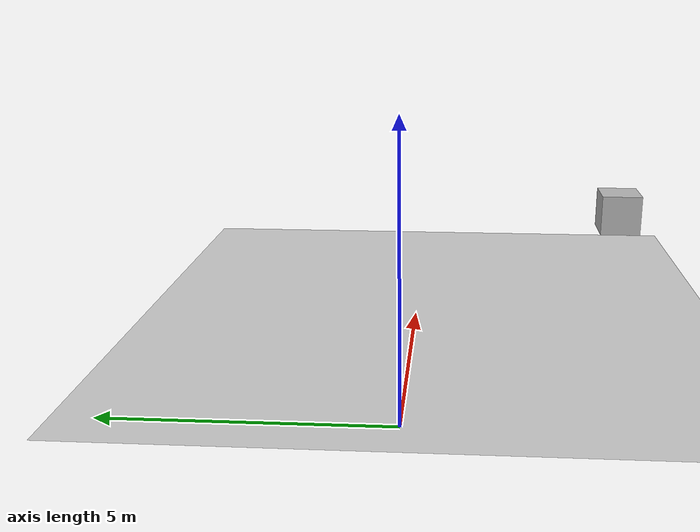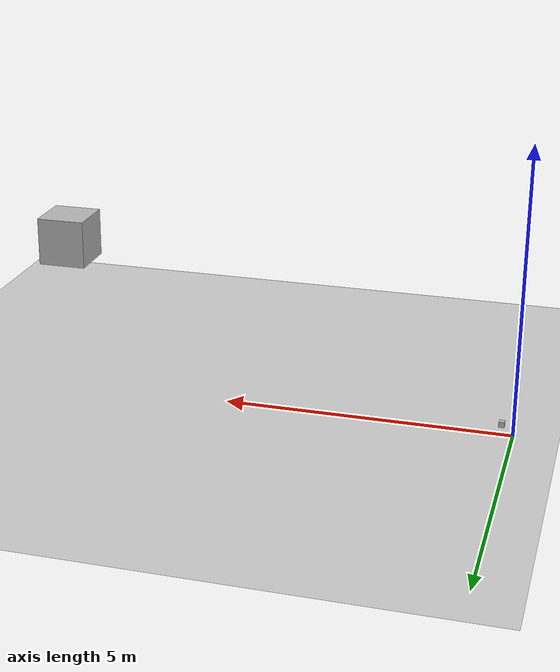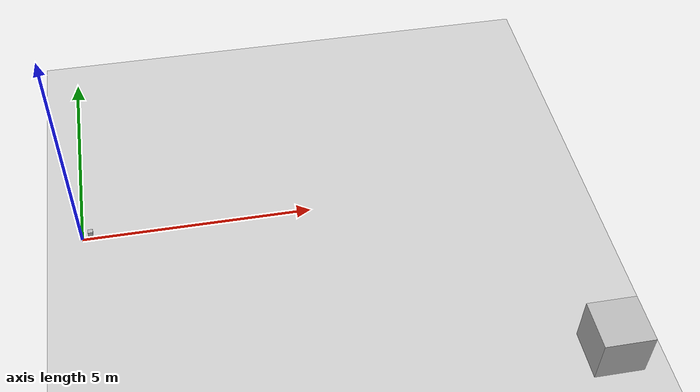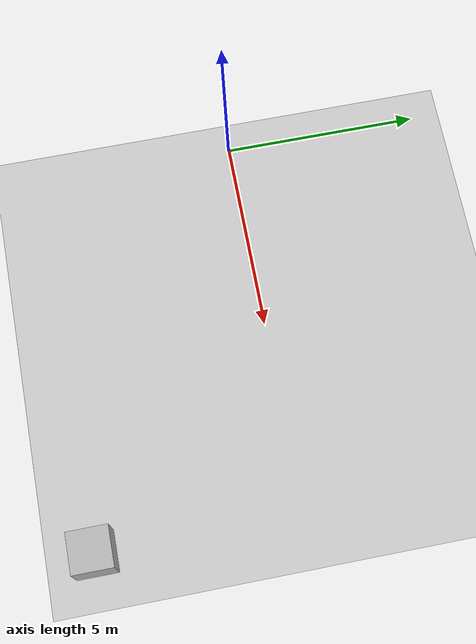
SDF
<?xml version="1.0"?>
<sdf version="1.4">
  <world name="default">

    <include>
      <uri>model://ground_plane</uri>
    </include>

    <include>
      <uri>model://sun</uri>
    </include>

    <include>
      <uri>model://camera</uri>uri>
      <static>true</static>
      <pose>0.2 0 0.2 0 0 0</pose>
      <plugin name="camera_feed" filename="build/libcamera_feed.so"/>
    </include>

    <model name="box">
      <pose>10 -5 1 0 0 0</pose>
      <link name="link">
        <collision name="collision">
          <geometry>
            <box>
              <size>1 1 1</size>
            </box>
          </geometry>
        </collision>

        <visual name="visual">
          <geometry>
            <box>
              <size>1 1 1</size>
            </box>
          </geometry>
        </visual>
      </link>

      <plugin name="model_push" filename="build/libmodel_push.so"/>

    </model>

  </world>
</sdf>

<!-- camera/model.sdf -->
<sdf version="1.5">
  <model name="camera">
    <pose>0 0 0.05 0 0 0</pose>
    <link name="link">
      <inertial>
        <mass>0.1</mass>
        <inertia>
          <ixx>0.000166667</ixx>
          <iyy>0.000166667</iyy>
          <izz>0.000166667</izz>
        </inertia>
      </inertial>
      <collision name="collision">
        <geometry>
          <box>
            <size>0.1 0.1 0.1</size>
          </box>
        </geometry>
      </collision>
      <visual name="visual">
        <geometry>
          <box>
            <size>0.1 0.1 0.1</size>
          </box>
        </geometry>
      </visual>
      <sensor name="camera" type="camera">
        <camera>
          <horizontal_fov>1.047</horizontal_fov>
          <image>
            <width>320</width>
            <height>240</height>
          </image>
          <clip>
            <near>0.1</near>
            <far>100</far>
          </clip>
        </camera>
        <always_on>1</always_on>
        <update_rate>30</update_rate>
        <visualize>true</visualize>
      </sensor>
    </link>
  </model>
</sdf>
